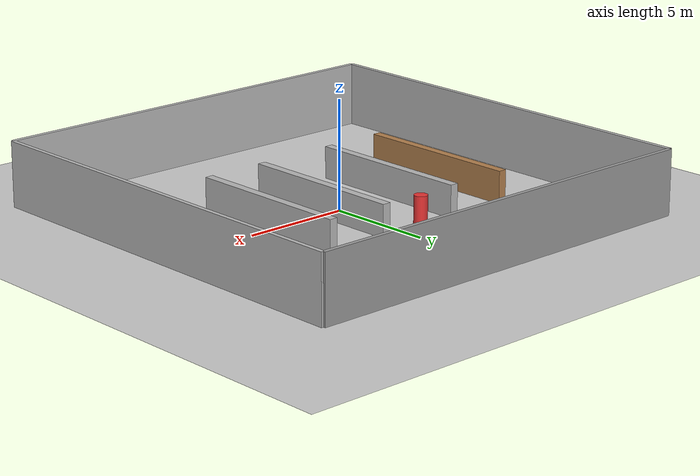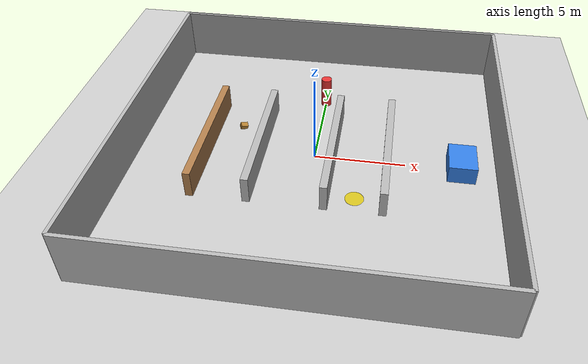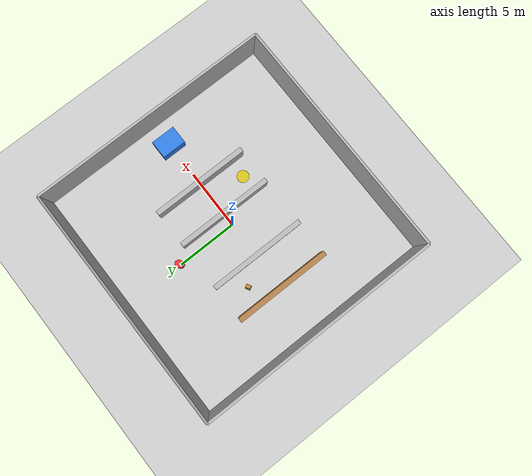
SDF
<?xml version="1.0"?>
<sdf version="1.6">
  <world name="warehouse">

    <!-- Physics engine tuning for stable simulation -->
    <physics name="default_physics" default="true" type="ode">
      <max_step_size>0.001</max_step_size>
      <real_time_factor>1.0</real_time_factor>
      <real_time_update_rate>1000</real_time_update_rate>
      <ode>
        <solver>
          <type>quick</type>
          <iters>50</iters>
          <sor>1.3</sor>
        </solver>
      </ode>
    </physics>

    <!-- Lighting -->
    <include>
      <uri>model://sun</uri>
    </include>

    <!-- Ground plane -->
    <include>
      <uri>model://ground_plane</uri>
    </include>

    <!-- ── Warehouse walls ── -->
    <!-- North wall -->
    <model name="wall_north">
      <static>true</static>
      <pose>0 10 1.5 0 0 0</pose>
      <link name="link">
        <collision name="collision">
          <geometry><box><size>20 0.2 3</size></box></geometry>
        </collision>
        <visual name="visual">
          <geometry><box><size>20 0.2 3</size></box></geometry>
          <material>
            <script><uri>file://media/materials/scripts/gazebo.material</uri>
                    <name>Gazebo/Grey</name></script>
          </material>
        </visual>
      </link>
    </model>

    <!-- South wall -->
    <model name="wall_south">
      <static>true</static>
      <pose>0 -10 1.5 0 0 0</pose>
      <link name="link">
        <collision name="collision">
          <geometry><box><size>20 0.2 3</size></box></geometry>
        </collision>
        <visual name="visual">
          <geometry><box><size>20 0.2 3</size></box></geometry>
        </visual>
      </link>
    </model>

    <!-- East wall -->
    <model name="wall_east">
      <static>true</static>
      <pose>10 0 1.5 0 0 1.5708</pose>
      <link name="link">
        <collision name="collision">
          <geometry><box><size>20 0.2 3</size></box></geometry>
        </collision>
        <visual name="visual">
          <geometry><box><size>20 0.2 3</size></box></geometry>
        </visual>
      </link>
    </model>

    <!-- West wall -->
    <model name="wall_west">
      <static>true</static>
      <pose>-10 0 1.5 0 0 1.5708</pose>
      <link name="link">
        <collision name="collision">
          <geometry><box><size>20 0.2 3</size></box></geometry>
        </collision>
        <visual name="visual">
          <geometry><box><size>20 0.2 3</size></box></geometry>
        </visual>
      </link>
    </model>

    <!-- ── Warehouse shelving aisles ── -->
    <!-- Aisle 1 — Left shelf unit -->
    <model name="shelf_1L">
      <static>true</static>
      <pose>-6 0 0.75 0 0 0</pose>
      <link name="link">
        <collision name="collision">
          <geometry><box><size>0.4 8 1.5</size></box></geometry>
        </collision>
        <visual name="visual">
          <geometry><box><size>0.4 8 1.5</size></box></geometry>
          <material>
            <script><name>Gazebo/WoodFloor</name></script>
          </material>
        </visual>
      </link>
    </model>

    <!-- Aisle 1 — Right shelf unit -->
    <model name="shelf_1R">
      <static>true</static>
      <pose>-3 0 0.75 0 0 0</pose>
      <link name="link">
        <collision name="collision">
          <geometry><box><size>0.4 8 1.5</size></box></geometry>
        </collision>
        <visual name="visual">
          <geometry><box><size>0.4 8 1.5</size></box></geometry>
        </visual>
      </link>
    </model>

    <!-- Repeat pattern for Aisle 2 -->
    <model name="shelf_2L">
      <static>true</static>
      <pose>1 0 0.75 0 0 0</pose>
      <link name="link">
        <collision name="collision">
          <geometry><box><size>0.4 8 1.5</size></box></geometry>
        </collision>
        <visual name="visual">
          <geometry><box><size>0.4 8 1.5</size></box></geometry>
        </visual>
      </link>
    </model>

    <model name="shelf_2R">
      <static>true</static>
      <pose>4 0 0.75 0 0 0</pose>
      <link name="link">
        <collision name="collision">
          <geometry><box><size>0.4 8 1.5</size></box></geometry>
        </collision>
        <visual name="visual">
          <geometry><box><size>0.4 8 1.5</size></box></geometry>
        </visual>
      </link>
    </model>

    <!-- ── Simulated hazards (static props) ── -->
    <!-- Fallen box — represents anomaly for YOLO to detect -->
    <model name="fallen_box_aisle1">
      <static>true</static>
      <pose>-4.5 2 0.15 0.3 0.2 0.5</pose>
      <link name="link">
        <collision name="collision">
          <geometry><box><size>0.4 0.3 0.3</size></box></geometry>
        </collision>
        <visual name="visual">
          <geometry><box><size>0.4 0.3 0.3</size></box></geometry>
          <material>
            <ambient>0.7 0.5 0.2 1</ambient>
            <diffuse>0.7 0.5 0.2 1</diffuse>
          </material>
        </visual>
      </link>
    </model>

    <!-- Spill simulation — flat yellow disc -->
    <model name="spill_aisle2">
      <static>true</static>
      <pose>2.5 -3 0.001 0 0 0</pose>
      <link name="link">
        <visual name="visual">
          <geometry><cylinder><radius>0.5</radius><length>0.002</length></cylinder></geometry>
          <material>
            <ambient>0.9 0.8 0.0 0.8</ambient>
            <diffuse>0.9 0.8 0.0 0.8</diffuse>
          </material>
        </visual>
      </link>
    </model>

    <!-- ── Picking station ── -->
    <model name="pick_station">
      <static>true</static>
      <pose>8 0 0.5 0 0 0</pose>
      <link name="link">
        <collision name="collision">
          <geometry><box><size>1.5 2.0 1.0</size></box></geometry>
        </collision>
        <visual name="visual">
          <geometry><box><size>1.5 2.0 1.0</size></box></geometry>
          <material>
            <ambient>0.2 0.5 0.9 1</ambient>
            <diffuse>0.2 0.5 0.9 1</diffuse>
          </material>
        </visual>
      </link>
    </model>

    <!-- ── Dynamic obstacle: moving human worker ── -->
    <!-- We'll control this programmatically via a ROS 2 node -->
    <model name="dynamic_actor">
      <pose>0 5 1.0 0 0 0</pose>
      <link name="link">
        <collision name="collision">
          <geometry><cylinder><radius>0.3</radius><length>1.8</length></cylinder></geometry>
        </collision>
        <visual name="visual">
          <geometry><cylinder><radius>0.3</radius><length>1.8</length></cylinder></geometry>
          <material>
            <ambient>0.9 0.2 0.2 1</ambient>
          </material>
        </visual>
        <inertial>
          <mass>70</mass>
          <inertia ixx="1" ixy="0" ixz="0" iyy="1" iyz="0" izz="0.5"/>
        </inertial>
      </link>
    </model>

  </world>
</sdf>
